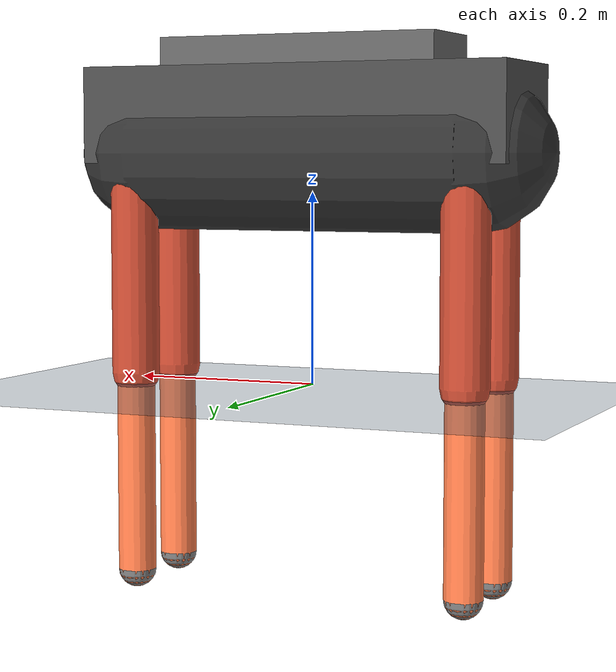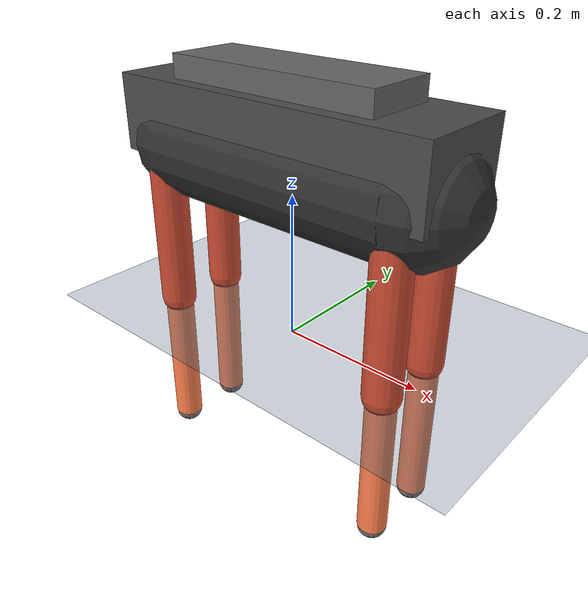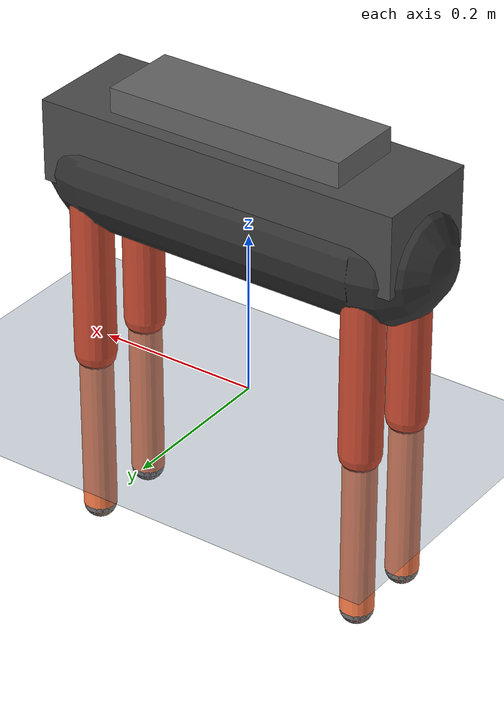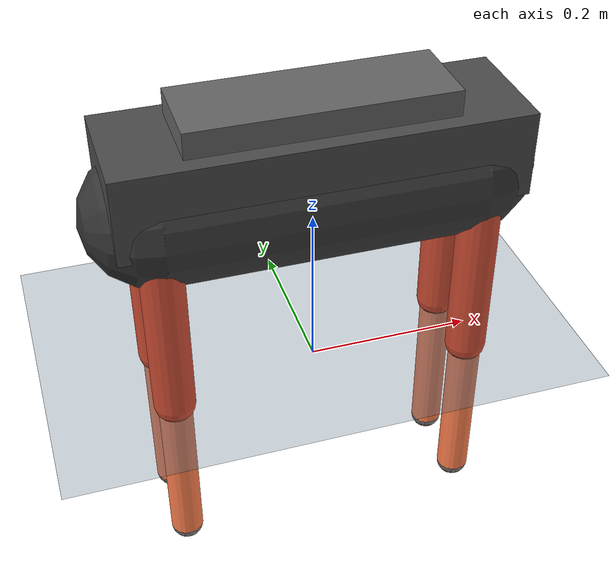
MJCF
<mujoco model="Unitree A1 Quadruped Robot">
  <compiler angle="degree" coordinate="local" inertiafromgeom="auto"/>
  <option timestep="0.002" iterations="50" solver="Newton" tolerance="1e-6"/>

  <default>
    <joint armature="0.01" damping="0.5" limited="true" solimplimit="0.95 0.99 0.001"/>
    <geom contype="1" conaffinity="1" condim="3" friction="0.7 0.7 0.0"/>
  </default>

  <asset>
    <texture type="skybox" builtin="gradient" rgb1="0.3 0.5 0.7" rgb2="0 0 0" width="512" height="512"/>
    <texture name="texplane" type="2d" builtin="checker" rgb1="0.2 0.3 0.4" rgb2="0.1 0.15 0.2" width="512" height="512"/>
    <material name="matplane" reflectance="0.2" texture="texplane" texrepeat="1 1"/>
  </asset>

  <worldbody>
    <light directional="true" diffuse="1 1 1" specular="0.1 0.1 0.1" ambient="0.2 0.2 0.2" pos="0 0 5" dir="0 0 -1"/>
    <geom name="floor" type="plane" size="50 50 0.1" material="matplane" rgba="0.3 0.4 0.5 1"/>

    <body name="base" pos="0 0 0.28">
      <!-- Base chassis -->
      <inertial pos="0 0 0" mass="2.1" diaginertia="0.014 0.028 0.039"/>

      <!-- Main body visual -->
      <geom name="base_geom" type="box" size="0.23 0.07 0.05" rgba="0.3 0.3 0.3 1" mass="2.0"/>
      <geom name="top_cover" type="box" size="0.15 0.05 0.03" pos="0 0 0.05" rgba="0.4 0.4 0.4 1" mass="0.5"/>

      <!-- Body shell for better collision -->
      <geom name="base_shell" type="capsule" fromto="-0.18 0 -0.04 0.18 0 -0.04" size="0.08" rgba="0.2 0.2 0.2 1" mass="0.5"/>

      <!-- Front left leg -->
      <body name="FL_hip" pos="0.183 0.047 -0.03">
        <inertial pos="0 0 -0.02" mass="0.3" diaginertia="0.001 0.002 0.002"/>
        <joint name="FL_hip_joint" type="hinge" axis="0 1 0" range="-1.5 4.0" pos="0 0 0"/>
        <geom name="FL_hip_geom" type="capsule" fromto="0 0 0 0 0 -0.04" size="0.025" rgba="0.6 0.2 0.2 1" mass="0.1"/>

        <body name="FL_thigh" pos="0 0 -0.04">
          <inertial pos="0 0 -0.1" mass="0.9" diaginertia="0.005 0.005 0.01"/>
          <joint name="FL_thigh_joint" type="hinge" axis="1 0 0" range="-1.5 4.0" pos="0 0 0"/>
          <geom name="FL_thigh_geom" type="capsule" fromto="0 0 0 0 0 -0.2" size="0.025" rgba="0.8 0.3 0.2 1" mass="0.3"/>

          <body name="FL_calf" pos="0 0 -0.2">
            <inertial pos="0 0 -0.1" mass="0.4" diaginertia="0.003 0.003 0.005"/>
            <joint name="FL_calf_joint" type="hinge" axis="1 0 0" range="-2.5 -0.1" pos="0 0 0"/>
            <geom name="FL_calf_geom" type="capsule" fromto="0 0 0 0 0 -0.21" size="0.02" rgba="1.0 0.5 0.3 1" mass="0.2"/>

            <body name="FL_foot" pos="0 0 -0.21">
              <inertial pos="0 0 0" mass="0.05" diaginertia="1e-4 1e-4 1e-4"/>
              <site name="FL_foot_site" pos="0 0 0" size="0.02"/>
              <geom name="FL_foot_geom" type="sphere" size="0.015" rgba="0.5 0.5 0.5 1" friction="0.7 0.7 0.0" mass="0.1"/>
            </body>
          </body>
        </body>
      </body>

      <!-- Front right leg -->
      <body name="FR_hip" pos="0.183 -0.047 -0.03">
        <inertial pos="0 0 -0.02" mass="0.3" diaginertia="0.001 0.002 0.002"/>
        <joint name="FR_hip_joint" type="hinge" axis="0 -1 0" range="-1.5 4.0" pos="0 0 0"/>
        <geom name="FR_hip_geom" type="capsule" fromto="0 0 0 0 0 -0.04" size="0.025" rgba="0.6 0.2 0.2 1" mass="0.1"/>

        <body name="FR_thigh" pos="0 0 -0.04">
          <inertial pos="0 0 -0.1" mass="0.9" diaginertia="0.005 0.005 0.01"/>
          <joint name="FR_thigh_joint" type="hinge" axis="1 0 0" range="-1.5 4.0" pos="0 0 0"/>
          <geom name="FR_thigh_geom" type="capsule" fromto="0 0 0 0 0 -0.2" size="0.025" rgba="0.8 0.3 0.2 1" mass="0.3"/>

          <body name="FR_calf" pos="0 0 -0.2">
            <inertial pos="0 0 -0.1" mass="0.4" diaginertia="0.003 0.003 0.005"/>
            <joint name="FR_calf_joint" type="hinge" axis="1 0 0" range="-2.5 -0.1" pos="0 0 0"/>
            <geom name="FR_calf_geom" type="capsule" fromto="0 0 0 0 0 -0.21" size="0.02" rgba="1.0 0.5 0.3 1" mass="0.2"/>

            <body name="FR_foot" pos="0 0 -0.21">
              <inertial pos="0 0 0" mass="0.05" diaginertia="1e-4 1e-4 1e-4"/>
              <site name="FR_foot_site" pos="0 0 0" size="0.02"/>
              <geom name="FR_foot_geom" type="sphere" size="0.015" rgba="0.5 0.5 0.5 1" friction="0.7 0.7 0.0" mass="0.1"/>
            </body>
          </body>
        </body>
      </body>

      <!-- Rear left leg -->
      <body name="RL_hip" pos="-0.183 0.047 -0.03">
        <inertial pos="0 0 -0.02" mass="0.3" diaginertia="0.001 0.002 0.002"/>
        <joint name="RL_hip_joint" type="hinge" axis="0 1 0" range="-1.5 4.0" pos="0 0 0"/>
        <geom name="RL_hip_geom" type="capsule" fromto="0 0 0 0 0 -0.04" size="0.025" rgba="0.6 0.2 0.2 1" mass="0.1"/>

        <body name="RL_thigh" pos="0 0 -0.04">
          <inertial pos="0 0 -0.1" mass="0.9" diaginertia="0.005 0.005 0.01"/>
          <joint name="RL_thigh_joint" type="hinge" axis="1 0 0" range="-1.5 4.0" pos="0 0 0"/>
          <geom name="RL_thigh_geom" type="capsule" fromto="0 0 0 0 0 -0.2" size="0.025" rgba="0.8 0.3 0.2 1" mass="0.3"/>

          <body name="RL_calf" pos="0 0 -0.2">
            <inertial pos="0 0 -0.1" mass="0.4" diaginertia="0.003 0.003 0.005"/>
            <joint name="RL_calf_joint" type="hinge" axis="1 0 0" range="-2.5 -0.1" pos="0 0 0"/>
            <geom name="RL_calf_geom" type="capsule" fromto="0 0 0 0 0 -0.21" size="0.02" rgba="1.0 0.5 0.3 1" mass="0.2"/>

            <body name="RL_foot" pos="0 0 -0.21">
              <inertial pos="0 0 0" mass="0.05" diaginertia="1e-4 1e-4 1e-4"/>
              <site name="RL_foot_site" pos="0 0 0" size="0.02"/>
              <geom name="RL_foot_geom" type="sphere" size="0.015" rgba="0.5 0.5 0.5 1" friction="0.7 0.7 0.0" mass="0.1"/>
            </body>
          </body>
        </body>
      </body>

      <!-- Rear right leg -->
      <body name="RR_hip" pos="-0.183 -0.047 -0.03">
        <inertial pos="0 0 -0.02" mass="0.3" diaginertia="0.001 0.002 0.002"/>
        <joint name="RR_hip_joint" type="hinge" axis="0 -1 0" range="-1.5 4.0" pos="0 0 0"/>
        <geom name="RR_hip_geom" type="capsule" fromto="0 0 0 0 0 -0.04" size="0.025" rgba="0.6 0.2 0.2 1" mass="0.1"/>

        <body name="RR_thigh" pos="0 0 -0.04">
          <inertial pos="0 0 -0.1" mass="0.9" diaginertia="0.005 0.005 0.01"/>
          <joint name="RR_thigh_joint" type="hinge" axis="1 0 0" range="-1.5 4.0" pos="0 0 0"/>
          <geom name="RR_thigh_geom" type="capsule" fromto="0 0 0 0 0 -0.2" size="0.025" rgba="0.8 0.3 0.2 1" mass="0.3"/>

          <body name="RR_calf" pos="0 0 -0.2">
            <inertial pos="0 0 -0.1" mass="0.4" diaginertia="0.003 0.003 0.005"/>
            <joint name="RR_calf_joint" type="hinge" axis="1 0 0" range="-2.5 -0.1" pos="0 0 0"/>
            <geom name="RR_calf_geom" type="capsule" fromto="0 0 0 0 0 -0.21" size="0.02" rgba="1.0 0.5 0.3 1" mass="0.2"/>

            <body name="RR_foot" pos="0 0 -0.21">
              <inertial pos="0 0 0" mass="0.05" diaginertia="1e-4 1e-4 1e-4"/>
              <site name="RR_foot_site" pos="0 0 0" size="0.02"/>
              <geom name="RR_foot_geom" type="sphere" size="0.015" rgba="0.5 0.5 0.5 1" friction="0.7 0.7 0.0" mass="0.1"/>
            </body>
          </body>
        </body>
      </body>
    </body>
  </worldbody>

  <actuator>
    <motor name="FL_hip_joint" joint="FL_hip_joint" gear="12" ctrllimited="true" ctrlrange="-35 35"/>
    <motor name="FL_thigh_joint" joint="FL_thigh_joint" gear="12" ctrllimited="true" ctrlrange="-35 35"/>
    <motor name="FL_calf_joint" joint="FL_calf_joint" gear="12" ctrllimited="true" ctrlrange="-35 35"/>

    <motor name="FR_hip_joint" joint="FR_hip_joint" gear="12" ctrllimited="true" ctrlrange="-35 35"/>
    <motor name="FR_thigh_joint" joint="FR_thigh_joint" gear="12" ctrllimited="true" ctrlrange="-35 35"/>
    <motor name="FR_calf_joint" joint="FR_calf_joint" gear="12" ctrllimited="true" ctrlrange="-35 35"/>

    <motor name="RL_hip_joint" joint="RL_hip_joint" gear="12" ctrllimited="true" ctrlrange="-35 35"/>
    <motor name="RL_thigh_joint" joint="RL_thigh_joint" gear="12" ctrllimited="true" ctrlrange="-35 35"/>
    <motor name="RL_calf_joint" joint="RL_calf_joint" gear="12" ctrllimited="true" ctrlrange="-35 35"/>

    <motor name="RR_hip_joint" joint="RR_hip_joint" gear="12" ctrllimited="true" ctrlrange="-35 35"/>
    <motor name="RR_thigh_joint" joint="RR_thigh_joint" gear="12" ctrllimited="true" ctrlrange="-35 35"/>
    <motor name="RR_calf_joint" joint="RR_calf_joint" gear="12" ctrllimited="true" ctrlrange="-35 35"/>
  </actuator>

  <sensor>
    <framelinvel name="base_linvel" objtype="body" objname="base"/>
    <frameangvel name="base_angvel" objtype="body" objname="base"/>
    <framepos name="FL_foot_pos" objtype="body" objname="FL_foot"/>
    <framepos name="FR_foot_pos" objtype="body" objname="FR_foot"/>
    <framepos name="RL_foot_pos" objtype="body" objname="RL_foot"/>
    <framepos name="RR_foot_pos" objtype="body" objname="RR_foot"/>
    <force name="FL_foot_force" site="FL_foot_site"/>
    <force name="FR_foot_force" site="FR_foot_site"/>
    <force name="RL_foot_force" site="RL_foot_site"/>
    <force name="RR_foot_force" site="RR_foot_site"/>
  </sensor>
</mujoco>
